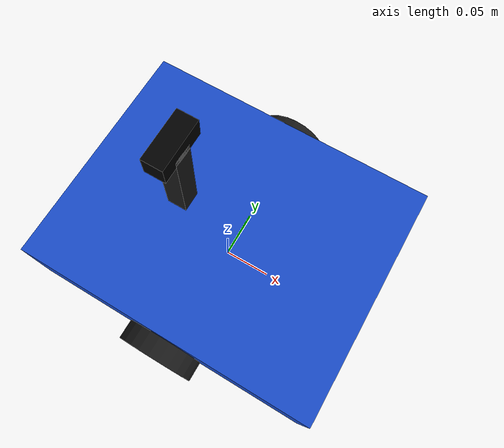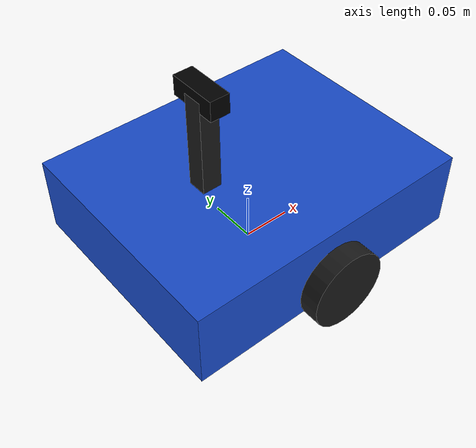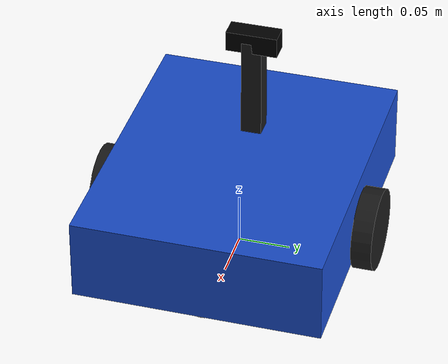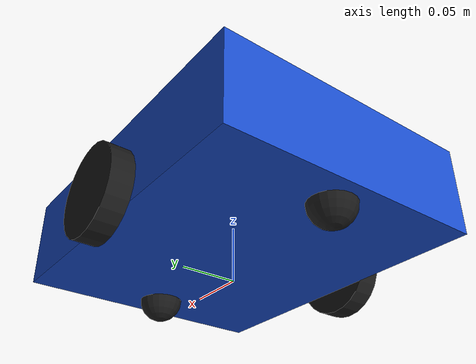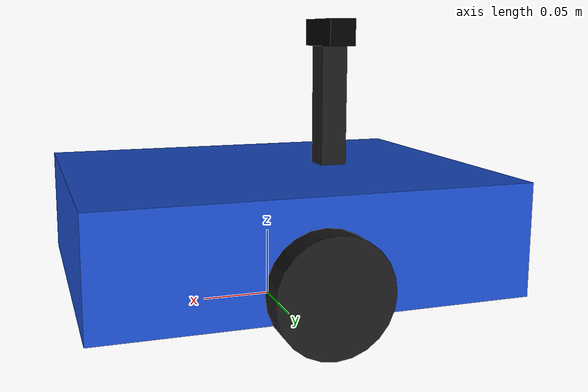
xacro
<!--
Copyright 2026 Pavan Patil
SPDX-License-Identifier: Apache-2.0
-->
<?xml version="1.0"?>
<robot xmlns:xacro="http://www.ros.org/wiki/xacro" name="dockbot">

  <!-- Camera sensor settings; the detector reads intrinsics from CameraInfo, not from here. -->
  <xacro:arg name="camera_width" default="1280"/>
  <xacro:arg name="camera_height" default="720"/>
  <xacro:arg name="camera_fov" default="1.0856"/>
  <xacro:arg name="camera_rate" default="30"/>
  <!-- Standard deviation of Gaussian pixel noise (0 to 1 of full scale); 0 turns the noise off. -->
  <xacro:arg name="camera_noise" default="0.0"/>
  <xacro:property name="camera_noise" value="$(arg camera_noise)"/>

  <xacro:property name="chassis_l" value="0.30"/>
  <xacro:property name="chassis_w" value="0.24"/>
  <xacro:property name="chassis_h" value="0.08"/>
  <xacro:property name="chassis_mass" value="2.4"/>
  <xacro:property name="wheel_r" value="0.04"/>
  <xacro:property name="wheel_w" value="0.02"/>
  <xacro:property name="wheel_sep" value="0.26"/>
  <xacro:property name="wheel_mass" value="0.15"/>
  <xacro:property name="caster_r" value="0.02"/>
  <xacro:property name="caster_mass" value="0.05"/>
  <xacro:property name="caster_x" value="0.12"/>
  <xacro:property name="mast_h" value="0.10"/>
  <xacro:property name="mast_s" value="0.02"/>
  <xacro:property name="mast_mass" value="0.10"/>
  <xacro:property name="cam_mass" value="0.05"/>
  <xacro:property name="cam_x" value="-0.05"/>
  <xacro:property name="cam_z" value="0.16"/>

  <!-- Inertia of a solid box, used for the chassis and the mast so the physics is stable. -->
  <xacro:macro name="box_inertia" params="m x y z">
    <inertial>
      <mass value="${m}"/>
      <inertia ixx="${m*(y*y+z*z)/12}" ixy="0" ixz="0"
               iyy="${m*(x*x+z*z)/12}" iyz="0" izz="${m*(x*x+y*y)/12}"/>
    </inertial>
  </xacro:macro>

  <!-- Inertia of a solid cylinder about its own axis, used for the drive wheels. -->
  <xacro:macro name="cylinder_inertia" params="m r h">
    <inertial>
      <mass value="${m}"/>
      <inertia ixx="${m*(3*r*r+h*h)/12}" ixy="0" ixz="0"
               iyy="${m*(3*r*r+h*h)/12}" iyz="0" izz="${m*r*r/2}"/>
    </inertial>
  </xacro:macro>

  <!-- Inertia of a solid sphere, used for the frictionless casters. -->
  <xacro:macro name="sphere_inertia" params="m r">
    <inertial>
      <mass value="${m}"/>
      <inertia ixx="${2*m*r*r/5}" ixy="0" ixz="0"
               iyy="${2*m*r*r/5}" iyz="0" izz="${2*m*r*r/5}"/>
    </inertial>
  </xacro:macro>

  <!-- One drive wheel; the side sign puts it left (+1) or right (-1) of the centre axle. -->
  <xacro:macro name="wheel" params="name side">
    <link name="${name}_link">
      <visual>
        <origin rpy="${pi/2} 0 0"/>
        <geometry><cylinder radius="${wheel_r}" length="${wheel_w}"/></geometry>
        <material name="dark"><color rgba="0.1 0.1 0.1 1"/></material>
      </visual>
      <collision>
        <origin rpy="${pi/2} 0 0"/>
        <geometry><cylinder radius="${wheel_r}" length="${wheel_w}"/></geometry>
      </collision>
      <xacro:cylinder_inertia m="${wheel_mass}" r="${wheel_r}" h="${wheel_w}"/>
    </link>
    <joint name="${name}_joint" type="continuous">
      <parent link="base_link"/>
      <child link="${name}_link"/>
      <origin xyz="0 ${side*wheel_sep/2} 0"/>
      <axis xyz="0 1 0"/>
    </joint>
    <gazebo reference="${name}_link">
      <mu1>1.0</mu1>
      <mu2>1.0</mu2>
    </gazebo>
  </xacro:macro>

  <!-- One frictionless caster ball; the sign puts it ahead of (+1) or behind (-1) the axle. -->
  <xacro:macro name="caster" params="name front">
    <link name="${name}_link">
      <visual>
        <geometry><sphere radius="${caster_r}"/></geometry>
        <material name="dark"/>
      </visual>
      <collision>
        <geometry><sphere radius="${caster_r}"/></geometry>
      </collision>
      <xacro:sphere_inertia m="${caster_mass}" r="${caster_r}"/>
    </link>
    <joint name="${name}_joint" type="fixed">
      <parent link="base_link"/>
      <child link="${name}_link"/>
      <origin xyz="${front*caster_x} 0 ${caster_r-wheel_r}"/>
    </joint>
    <gazebo reference="${name}_link">
      <mu1>0.0</mu1>
      <mu2>0.0</mu2>
    </gazebo>
  </xacro:macro>

  <!-- Ground-level frame that odometry is published for. -->
  <link name="base_footprint"/>

  <joint name="base_joint" type="fixed">
    <parent link="base_footprint"/>
    <child link="base_link"/>
    <origin xyz="0 0 ${wheel_r}"/>
  </joint>

  <!-- base_link: axle centre; the chassis rides 2 cm above the ground. -->
  <link name="base_link">
    <visual>
      <origin xyz="0 0 ${0.02}"/>
      <geometry><box size="${chassis_l} ${chassis_w} ${chassis_h}"/></geometry>
      <material name="blue"><color rgba="0.1 0.3 0.8 1"/></material>
    </visual>
    <collision>
      <origin xyz="0 0 ${0.02}"/>
      <geometry><box size="${chassis_l} ${chassis_w} ${chassis_h}"/></geometry>
    </collision>
    <inertial>
      <origin xyz="0 0 ${0.02}"/>
      <mass value="${chassis_mass}"/>
      <inertia ixx="${chassis_mass*(chassis_w*chassis_w+chassis_h*chassis_h)/12}" ixy="0" ixz="0"
               iyy="${chassis_mass*(chassis_l*chassis_l+chassis_h*chassis_h)/12}" iyz="0"
               izz="${chassis_mass*(chassis_l*chassis_l+chassis_w*chassis_w)/12}"/>
    </inertial>
  </link>

  <xacro:wheel name="wheel_left" side="1"/>
  <xacro:wheel name="wheel_right" side="-1"/>
  <xacro:caster name="caster_front" front="1"/>
  <xacro:caster name="caster_rear" front="-1"/>

  <!-- Mast carrying the camera from the chassis top (0.10 m) up to 0.20 m above the ground. -->
  <link name="mast_link">
    <visual>
      <geometry><box size="${mast_s} ${mast_s} ${mast_h}"/></geometry>
      <material name="dark"/>
    </visual>
    <collision>
      <geometry><box size="${mast_s} ${mast_s} ${mast_h}"/></geometry>
    </collision>
    <xacro:box_inertia m="${mast_mass}" x="${mast_s}" y="${mast_s}" z="${mast_h}"/>
  </link>
  <joint name="mast_joint" type="fixed">
    <parent link="base_link"/>
    <child link="mast_link"/>
    <origin xyz="${cam_x} 0 0.11"/>
  </joint>

  <!-- camera_link: x forward, the body frame of the camera. -->
  <link name="camera_link">
    <visual>
      <geometry><box size="0.02 0.05 0.02"/></geometry>
      <material name="black"><color rgba="0 0 0 1"/></material>
    </visual>
    <xacro:box_inertia m="${cam_mass}" x="0.02" y="0.05" z="0.02"/>
  </link>
  <joint name="camera_joint" type="fixed">
    <parent link="base_link"/>
    <child link="camera_link"/>
    <origin xyz="${cam_x} 0 ${cam_z}"/>
  </joint>

  <!-- camera_optical_frame: z forward, x right, y down, as image-based vision expects. -->
  <link name="camera_optical_frame"/>
  <joint name="camera_optical_joint" type="fixed">
    <parent link="camera_link"/>
    <child link="camera_optical_frame"/>
    <origin rpy="${-pi/2} 0 ${-pi/2}"/>
  </joint>

  <gazebo>
    <!-- Drives from cmd_vel and publishes odom and the odom -> base_footprint transform. -->
    <plugin filename="gz-sim-diff-drive-system" name="gz::sim::systems::DiffDrive">
      <left_joint>wheel_left_joint</left_joint>
      <right_joint>wheel_right_joint</right_joint>
      <wheel_separation>${wheel_sep}</wheel_separation>
      <wheel_radius>${wheel_r}</wheel_radius>
      <topic>cmd_vel</topic>
      <odom_topic>odom</odom_topic>
      <frame_id>odom</frame_id>
      <child_frame_id>base_footprint</child_frame_id>
      <odom_publisher_frequency>30</odom_publisher_frequency>
      <tf_topic>/tf</tf_topic>
    </plugin>
    <!-- Wheel joint angles, so robot_state_publisher can place the wheels. -->
    <plugin filename="gz-sim-joint-state-publisher-system"
            name="gz::sim::systems::JointStatePublisher">
      <topic>joint_states</topic>
    </plugin>
    <!-- True pose of the robot in the world frame, for scoring tests only. No node under
         test subscribes to it. -->
    <plugin filename="gz-sim-odometry-publisher-system"
            name="gz::sim::systems::OdometryPublisher">
      <odom_frame>world</odom_frame>
      <robot_base_frame>base_footprint</robot_base_frame>
      <odom_topic>ground_truth/odom</odom_topic>
      <odom_publish_frequency>30</odom_publish_frequency>
      <dimensions>3</dimensions>
    </plugin>
  </gazebo>

  <gazebo reference="camera_link">
    <sensor name="camera" type="camera">
      <always_on>true</always_on>
      <visualize>false</visualize>
      <update_rate>$(arg camera_rate)</update_rate>
      <topic>camera/image_raw</topic>
      <gz_frame_id>camera_optical_frame</gz_frame_id>
      <camera>
        <horizontal_fov>$(arg camera_fov)</horizontal_fov>
        <image>
          <width>$(arg camera_width)</width>
          <height>$(arg camera_height)</height>
          <format>R8G8B8</format>
        </image>
        <clip><near>0.05</near><far>20.0</far></clip>
        <xacro:if value="${camera_noise &gt; 0.0}">
          <noise>
            <type>gaussian</type>
            <mean>0.0</mean>
            <stddev>${camera_noise}</stddev>
          </noise>
        </xacro:if>
      </camera>
    </sensor>
  </gazebo>

</robot>
